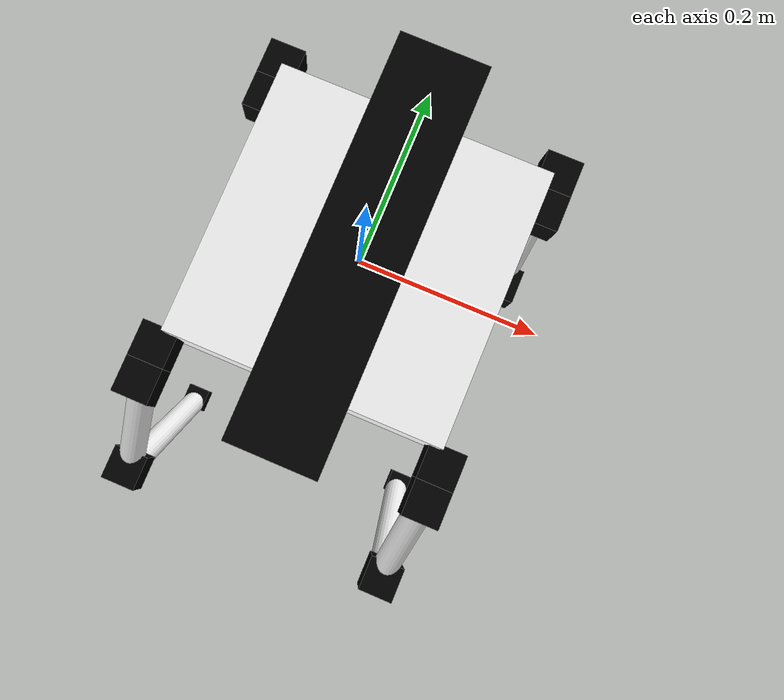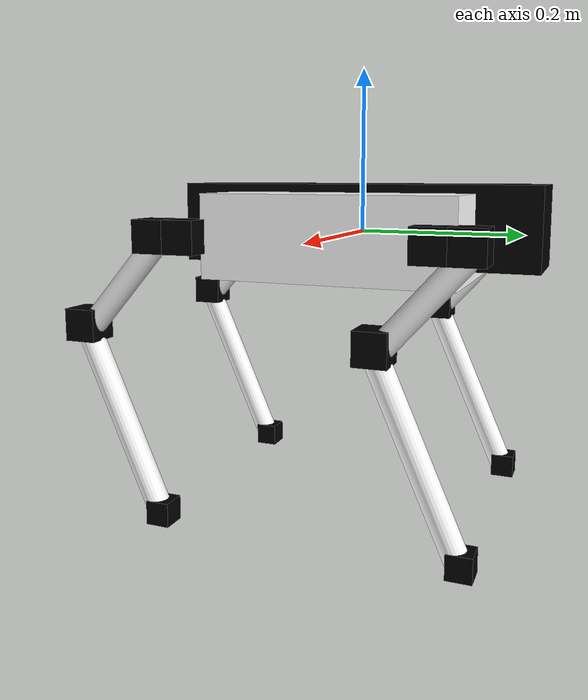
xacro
<?xml version="1.0"?>
<robot xmlns:xacro="http:/www.ros.org/wiki/xacro" name="robot">

<!-- leg -->
<xacro:property name ="leg1_r" value = "0.015"/>
<xacro:property name = "leg1_h" value = "0.15"/>
<xacro:property name = "leg2_r" value = "0.015"/>
<xacro:property name = "leg2_h" value = "0.25"/>

<!-- Moment -->
<xacro:property name="mass" value="5"/>
<xacro:property name="Ixx" value="0.01"/>
<xacro:property name="Iyy" value="0.01"/>
<xacro:property name="Izz" value="0.01"/>

<xacro:property name="effort" value = "30"/>
<xacro:property name = "base_effort" value = "70"/>
<xacro:property name="velocity" value ="5.0"/>
<xacro:property name="lower" value = "-3.14"/>
<xacro:property name ="upper" value ="3.14"/>
<link name="dummy">

</link>
<joint name="dummy_base" type = "fixed">
	<parent link="dummy"/>
	<child link = "base_link"/>

</joint>
<link name = "base_link">
	<visual>
		<origin xyz ="0 0 0" rpy= "0 0 0"/>
		<geometry>
			<box size="0.3 0.3 0.1"/>
		</geometry>
		<material name="white">
        			<color rgba="1 1 1 1"/>
      		</material>

	</visual>
	<collision>
		<origin xyz ="0 0 0" rpy= "0 0 0"/>
		<geometry>
			<box size="0.3 0.3 0.1"/>
		</geometry>
		<material name="white">
        			<color rgba="1 1 1 1"/>
      		</material>

	</collision>
	<inertial>
		<mass value="${mass}"/>
		<origin xyz="0 0 0"/>
		<inertia ixx="${Ixx}" ixy="0" ixz = "0" iyy="${Iyy}" iyz="0" izz="${Izz}"/>
	</inertial>
</link>
<link name = "box">
	<visual>
		<origin xyz ="0 0 0" rpy= "0 0 0"/>
		<geometry>
			<box size="0.1 0.45 0.1"/>
		</geometry>
		<material name="black">
        			<color rgba="0 0 0 1"/>
      		</material>

	</visual>
	<collision>
		<origin xyz ="0 0 0" rpy= "0 0 0"/>
		<geometry>
			<box size="0.1 0.45 0.1"/>
		</geometry>
		<material name="black">
        			<color rgba="0 0 0 1"/>
      		</material>

	</collision>
	<inertial>
		<mass value="4"/>
		<origin xyz="0 0 0"/>
		<inertia ixx="${Ixx}" ixy="0" ixz = "0" iyy="${Iyy}" iyz="0" izz="${Izz}"/>
	</inertial>
</link>
<joint name= " box_base_link" type = "fixed">
    	<origin xyz="0 0 0.01" rpy="0 0 0"/>
    	<parent link="base_link"/>
    	<child link="box"/>
</joint>
<joint name= "leg1_back1_base_link" type = "revolute">
    	<origin xyz="0.159 -0.165 0" rpy="0 0 -1.57"/>
    	<parent link="base_link"/>
    	<child link="rot_back1_bas"/>
    	<limit effort="${effort}" velocity = "${velocity}" lower = "0" upper="3.14"/>
</joint>
<link name="rot_back1_bas">
	<visual>
		<origin xyz ="0 0 0" rpy= "0 0 0"/>
		<geometry>
			<box size= "0.04 0.04 0.04"/>
		</geometry>
		<material name = "black">
			<color rgba="0.0 0.0 0.0 1.0"/>
		</material>
	</visual>
	<collision>
		<origin xyz ="0 0 0" rpy= "0 0 0"/>
		<geometry>
			<box size= "0.04 0.04 0.04"/>
		</geometry>
		<surface>
          	<friction>
            		<ode>
              			<mu>200.0</mu>
              			<mu2>100.0</mu2>
            		</ode>
          	</friction>
        		</surface>
		<material name = "black">
			<color rgba="0.0 0.0 0.0 1.0"/>
		</material>
	</collision>
	<inertial>
		<mass value="${mass}"/>
		<origin xyz="0 0 0"/>
		<inertia ixx="${Ixx}" ixy="0" ixz = "0" iyy="${Iyy}" iyz="0" izz="${Izz}"/>
	</inertial>
</link>
<joint name = "back1_rot_base" type = "continuous">
	<origin xyz="0.04 0 0" rpy="0 0 1.57"/>
    	<parent link="rot_back1_bas"/>
    	<child link="back1_base_leg"/>
    	<limit effort="${effort}" velocity = "${velocity}" lower = "${lower}" upper="${upper}"/>
</joint>
<link name="back1_base_leg">
	<visual>
		<origin xyz ="0 0 0" rpy= "0 0 0"/>
		<geometry>
			<box size= "0.04 0.04 0.04"/>
		</geometry>
		<material name = "black">
			<color rgba="0.0 0.0 0.0 1.0"/>
		</material>
	</visual>
	<collision>
		<origin xyz ="0 0 0" rpy= "0 0 0"/>
		<geometry>
			<box size= "0.04 0.04 0.04"/>
		</geometry>
		<surface>
          	<friction>
            		<ode>
              			<mu>200.0</mu>
              			<mu2>100.0</mu2>
            		</ode>
          	</friction>
        		</surface>
		<material name = "black">
			<color rgba="0.0 0.0 0.0 1.0"/>
		</material>
	</collision>
	<inertial>
		<mass value="2"/>
		<origin xyz="0 0 0"/>
		<inertia ixx="${Ixx}" ixy="0" ixz = "0" iyy="${Iyy}" iyz="0" izz="${Izz}"/>
	</inertial>
</link>
<joint name= "leg1_back1_base_leg" type = "fixed">
    	<origin xyz="0 0 0" rpy="0 0 0"/>
    	<parent link="back1_base_leg"/>
    	<child link="back1_leg1"/>
    	<limit effort="${effort}" velocity = "${velocity}" lower = "${lower}" upper="${upper}"/>
</joint>
<link name="back1_leg1">
	<visual>
		<origin xyz ="0 -0.05 -0.065" rpy= "-0.729373 0 0"/>
		<geometry>
			<cylinder length="${leg1_h}" radius="${leg1_r}"/>
		</geometry>
		<material name = "white">
			<color rgba="1.0 1.0 1.0 1.0"/>
		</material>
	</visual>
	<collision>
		<origin xyz ="0 -0.05 -0.065" rpy= "-0.729373 0 0"/>
		<geometry>
			<cylinder length="${leg1_h}" radius="${leg1_r}"/>
		</geometry>
		<surface>
          	<friction>
            		<ode>
              			<mu>200.0</mu>
              			<mu2>100.0</mu2>
            		</ode>
          	</friction>
        		</surface>
		<material name = "white">
			<color rgba="1.0 1.0 1.0 1.0"/>
		</material>
	</collision>
	<inertial>
		<mass value="${mass}"/>
		<origin xyz="0 0 0"/>
		<inertia ixx="${Ixx}" ixy="0" ixz = "0" iyy="${Iyy}" iyz="0" izz="${Izz}"/>
	</inertial>
</link>

<link name="back1_joint1">
	<visual>
		<origin xyz ="0 0 0" rpy= "0 0 0"/>
		<geometry>
			<box size= "0.04 0.04 0.04"/>
		</geometry>
		<material name = "black">
			<color rgba="0.0 0.0 0.0 1.0"/>
		</material>
	</visual>
	<collision>
		<origin xyz ="0 0 0" rpy= "0 0 0"/>
		<geometry>
			<box size= "0.04 0.04 0.04"/>
		</geometry>
		<surface>
          	<friction>
            		<ode>
              			<mu>200.0</mu>
              			<mu2>100.0</mu2>
            		</ode>
          	</friction>
        		</surface>
		<material name = "black">
			<color rgba="0.0 0.0 0.0 1.0"/>
		</material>
	</collision>
	<inertial>
		<mass value="1"/>
		<origin xyz="0 0 0"/>
		<inertia ixx="${Ixx}" ixy="0" ixz = "0" iyy="${Iyy}" iyz="0" izz="${Izz}"/>
	</inertial>
</link>

<joint name= "back1_leg1_joint1" type = "continuous">
    	<origin xyz="0 -0.1 -0.1118" rpy="0 0 0"/>
    	<parent link="back1_leg1"/>
    	<child link="back1_joint1"/>
    	<limit effort="${effort}" velocity = "${velocity}" lower = "${lower}" upper="${upper}"/>
</joint>
<link name="back1_leg2">
	<visual>
		<origin xyz ="0 0.045 -0.1118" rpy= "0.411322 0 0"/>
		<geometry>
			<cylinder length="${leg2_h}" radius="${leg2_r}"/>
		</geometry>
		<material name = "white">
			<color rgba="1.0 1.0 1.0 1.0"/>
		</material>
	</visual>
	<collision>
		<origin xyz ="0 0.045 -0.1118" rpy= "0.411322 0 0"/>
		<geometry>
			<cylinder length="${leg2_h}" radius="${leg2_r}"/>
		</geometry>
		<material name = "white">
			<color rgba="1.0 1.0 1.0 1.0"/>
		</material>
	</collision>
	<inertial>
		<mass value="2"/>
		<origin xyz="0 0 0.015"/>
		<inertia ixx="${Ixx}" ixy="0" ixz = "0" iyy="${Iyy}" iyz="0" izz="${Izz}"/>
	</inertial>
</link>
<joint name= " back1_leg2_joint1" type = "fixed">
    	<origin xyz="0 0 0" rpy="0 0 0"/>
    	<parent link="back1_joint1"/>
    	<child link="back1_leg2"/>
</joint>
<link name="back1_roller">
	<visual>
		<origin xyz ="0 0 0" rpy= "0 0 0"/>
		<geometry>
			<box size= "0.03 0.03 0.03"/>
		</geometry>
		<material name = "black">
			<color rgba="0.0 0.0 0.0 1.0"/>
		</material>
	</visual>
	<collision>
		<origin xyz ="0 0 0" rpy= "0 0 0"/>
		<geometry>
			<box size= "0.03 0.04 0.03"/>
		</geometry>
		<material name = "black">
			<color rgba="0.0 0.0 0.0 1.0"/>
		</material>
	</collision>
	<inertial>
		<mass value="1"/>
		<origin xyz="0 0.04 0"/>
		<inertia ixx="${Ixx}" ixy="0" ixz = "0" iyy="${Iyy}" iyz="0" izz="${Izz}"/>
	</inertial>
</link>
<joint name= " back1_leg2_roller" type = "fixed">
    	<origin xyz="0 0.1 -0.22912" rpy="0 0 0"/>
    	<parent link="back1_leg2"/>
    	<child link="back1_roller"/>
</joint>

<joint name= "leg1_back2_base_link" type = "revolute">
    	<origin xyz="-0.159 -0.165 0" rpy="0 0 -1.57"/>
    	<parent link="base_link"/>
    	<child link="rot_back2_bas"/>
    	<limit effort="${effort}" velocity = "${velocity}" lower = "-3.14" upper="0"/>
</joint>
<link name="rot_back2_bas">
	<visual>
		<origin xyz ="0 0 0" rpy= "0 0 0"/>
		<geometry>
			<box size= "0.04 0.04 0.04"/>
		</geometry>
		<material name = "black">
			<color rgba="0.0 0.0 0.0 1.0"/>
		</material>
	</visual>
	<collision>
		<origin xyz ="0 0 0" rpy= "0 0 0"/>
		<geometry>
			<box size= "0.04 0.04 0.04"/>
		</geometry>
		<surface>
          	<friction>
            		<ode>
              			<mu>200.0</mu>
              			<mu2>100.0</mu2>
            		</ode>
          	</friction>
        		</surface>
		<material name = "black">
			<color rgba="0.0 0.0 0.0 1.0"/>
		</material>
	</collision>
	<inertial>
		<mass value="${mass}"/>
		<origin xyz="0 0 0"/>
		<inertia ixx="${Ixx}" ixy="0" ixz = "0" iyy="${Iyy}" iyz="0" izz="${Izz}"/>
	</inertial>
</link>
<joint name = "back2_rot_base" type = "continuous">
	<origin xyz="0.04 0 0" rpy="0 0 1.57"/>
    	<parent link="rot_back2_bas"/>
    	<child link="back2_base_leg"/>
    	<limit effort="${effort}" velocity = "${velocity}" lower = "${lower}" upper="${upper}"/>
</joint>
<link name="back2_base_leg">
	<visual>
		<origin xyz ="0 0 0" rpy= "0 0 0"/>
		<geometry>
			<box size= "0.04 0.04 0.04"/>
		</geometry>
		<material name = "black">
			<color rgba="0.0 0.0 0.0 1.0"/>
		</material>
	</visual>
	<collision>
		<origin xyz ="0 0 0" rpy= "0 0 0"/>
		<geometry>
			<box size= "0.04 0.04 0.04"/>
		</geometry>
		<surface>
          	<friction>
            		<ode>
              			<mu>200.0</mu>
              			<mu2>100.0</mu2>
            		</ode>
          	</friction>
        		</surface>
		<material name = "black">
			<color rgba="0.0 0.0 0.0 1.0"/>
		</material>
	</collision>
	<inertial>
		<mass value="2"/>
		<origin xyz="0 0 0"/>
		<inertia ixx="${Ixx}" ixy="0" ixz = "0" iyy="${Iyy}" iyz="0" izz="${Izz}"/>
	</inertial>
</link>
<joint name= "leg1_back2_base_leg" type = "fixed">
    	<origin xyz="0 0 0" rpy="0 0 0"/>
    	<parent link="back2_base_leg"/>
    	<child link="back2_leg1"/>
    	<limit effort="${effort}" velocity = "${velocity}" lower = "${lower}" upper="${upper}"/>
</joint>
<link name="back2_leg1">
	<visual>
		<origin xyz ="0 -0.05 -0.065" rpy= "-0.729373 0 0"/>
		<geometry>
			<cylinder length="${leg1_h}" radius="${leg1_r}"/>
		</geometry>
		<material name = "white">
			<color rgba="1.0 1.0 1.0 1.0"/>
		</material>
	</visual>
	<collision>
		<origin xyz ="0 -0.05 -0.065" rpy= "-0.729373 0 0"/>
		<geometry>
			<cylinder length="${leg1_h}" radius="${leg1_r}"/>
		</geometry>
		<surface>
          	<friction>
            		<ode>
              			<mu>200.0</mu>
              			<mu2>100.0</mu2>
            		</ode>
          	</friction>
        		</surface>
		<material name = "white">
			<color rgba="1.0 1.0 1.0 1.0"/>
		</material>
	</collision>
	<inertial>
		<mass value="${mass}"/>
		<origin xyz="0 0 0"/>
		<inertia ixx="${Ixx}" ixy="0" ixz = "0" iyy="${Iyy}" iyz="0" izz="${Izz}"/>
	</inertial>
</link>

<link name="back2_joint1">
	<visual>
		<origin xyz ="0 0 0" rpy= "0 0 0"/>
		<geometry>
			<box size= "0.04 0.04 0.04"/>
		</geometry>
		<material name = "black">
			<color rgba="0.0 0.0 0.0 1.0"/>
		</material>
	</visual>
	<collision>
		<origin xyz ="0 0 0" rpy= "0 0 0"/>
		<geometry>
			<box size= "0.04 0.04 0.04"/>
		</geometry>
		<surface>
          	<friction>
            		<ode>
              			<mu>200.0</mu>
              			<mu2>100.0</mu2>
            		</ode>
          	</friction>
        		</surface>
		<material name = "black">
			<color rgba="0.0 0.0 0.0 1.0"/>
		</material>
	</collision>
	<inertial>
		<mass value="1"/>
		<origin xyz="0 0 0"/>
		<inertia ixx="${Ixx}" ixy="0" ixz = "0" iyy="${Iyy}" iyz="0" izz="${Izz}"/>
	</inertial>
</link>

<joint name= "back2_leg1_joint1" type = "continuous">
    	<origin xyz="0 -0.1 -0.1118" rpy="0 0 0"/>
    	<parent link="back2_leg1"/>
    	<child link="back2_joint1"/>
    	<limit effort="${effort}" velocity = "${velocity}" lower = "${lower}" upper="${upper}"/>
</joint>
<link name="back2_leg2">
	<visual>
		<origin xyz ="0 0.045 -0.1118" rpy= "0.411322 0 0"/>
		<geometry>
			<cylinder length="${leg2_h}" radius="${leg2_r}"/>
		</geometry>
		<material name = "white">
			<color rgba="1.0 1.0 1.0 1.0"/>
		</material>
	</visual>
	<collision>
		<origin xyz ="0 0.045 -0.1118" rpy= "0.411322 0 0"/>
		<geometry>
			<cylinder length="${leg2_h}" radius="${leg2_r}"/>
		</geometry>
		<material name = "white">
			<color rgba="1.0 1.0 1.0 1.0"/>
		</material>
	</collision>
	<inertial>
		<mass value="2"/>
		<origin xyz="0 0 0.015"/>
		<inertia ixx="${Ixx}" ixy="0" ixz = "0" iyy="${Iyy}" iyz="0" izz="${Izz}"/>
	</inertial>
</link>
<joint name= "back2_leg2_joint1" type = "fixed">
    	<origin xyz="0 0 0" rpy="0 0 0"/>
    	<parent link="back2_joint1"/>
    	<child link="back2_leg2"/>
</joint>
<link name="back2_roller">
	<visual>
		<origin xyz ="0 0 0" rpy= "0 0 0"/>
		<geometry>
			<box size= "0.03 0.03 0.03"/>
		</geometry>
		<material name = "black">
			<color rgba="0.0 0.0 0.0 1.0"/>
		</material>
	</visual>
	<collision>
		<origin xyz ="0 0 0" rpy= "0 0 0"/>
		<geometry>
			<box size= "0.03 0.04 0.03"/>
		</geometry>
		<material name = "black">
			<color rgba="0.0 0.0 0.0 1.0"/>
		</material>
	</collision>
	<inertial>
		<mass value="1"/>
		<origin xyz="0 0.04 0"/>
		<inertia ixx="${Ixx}" ixy="0" ixz = "0" iyy="${Iyy}" iyz="0" izz="${Izz}"/>
	</inertial>
</link>
<joint name= " back2_leg2_roller" type = "fixed">
    	<origin xyz="0 0.1 -0.22912" rpy="0 0 0"/>
    	<parent link="back2_leg2"/>
    	<child link="back2_roller"/>
</joint>
<joint name="leg1_face1_base_link" type ="revolute">
    	<origin xyz="0.159 0.125 0" rpy="0 0 -1.57"/>
    	<parent link="base_link"/>
    	<child link="rot_face1_bas"/>
    	<limit effort="${effort}" velocity = "${velocity}" lower = "0" upper="3.14"/>
</joint>
<link name="rot_face1_bas">
	<visual>
		<origin xyz ="0 0 0" rpy= "0 0 0"/>
		<geometry>
			<box size= "0.04 0.04 0.04"/>
		</geometry>
		<material name = "black">
			<color rgba="0.0 0.0 0.0 1.0"/>
		</material>
	</visual>
	<collision>
		<origin xyz ="0 0 0" rpy= "0 0 0"/>
		<geometry>
			<box size= "0.04 0.04 0.04"/>
		</geometry>
		<surface>
          	<friction>
            		<ode>
              			<mu>200.0</mu>
              			<mu2>100.0</mu2>
            		</ode>
          	</friction>
        		</surface>
		<material name = "black">
			<color rgba="0.0 0.0 0.0 1.0"/>
		</material>
	</collision>
	<inertial>
		<mass value="${mass}"/>
		<origin xyz="0 0 0"/>
		<inertia ixx="${Ixx}" ixy="0" ixz = "0" iyy="${Iyy}" iyz="0" izz="${Izz}"/>
	</inertial>
</link>
<joint name = "face1_rot_base" type = "continuous">
	<origin xyz="-0.04 0 0" rpy="0 0 1.57"/>
    	<parent link="rot_face1_bas"/>
    	<child link="face1_base_leg"/>
    	<limit effort="${effort}" velocity = "${velocity}" lower = "${lower}" upper="${upper}"/>
</joint>
<link name="face1_base_leg">
	<visual>
		<origin xyz ="0 0 0" rpy= "0 0 0"/>
		<geometry>
			<box size= "0.04 0.04 0.04"/>
		</geometry>
		<material name = "black">
			<color rgba="0.0 0.0 0.0 1.0"/>
		</material>
	</visual>
	<collision>
		<origin xyz ="0 0 0" rpy= "0 0 0"/>
		<geometry>
			<box size= "0.04 0.04 0.04"/>
		</geometry>
		<surface>
          	<friction>
            		<ode>
              			<mu>200.0</mu>
              			<mu2>100.0</mu2>
            		</ode>
          	</friction>
        		</surface>
		<material name = "black">
			<color rgba="0.0 0.0 0.0 1.0"/>
		</material>
	</collision>
	<inertial>
		<mass value="2"/>
		<origin xyz="0 0 0"/>
		<inertia ixx="${Ixx}" ixy="0" ixz = "0" iyy="${Iyy}" iyz="0" izz="${Izz}"/>
	</inertial>
</link>
<joint name= "leg1_face1_base_leg" type = "fixed">
    	<origin xyz="0 0 0" rpy="0 0 0"/>
    	<parent link="face1_base_leg"/>
    	<child link="face1_leg1"/>
    	<limit effort="${effort}" velocity = "${velocity}" lower = "${lower}" upper="${upper}"/>
</joint>
<link name="face1_leg1">
	<visual>
		<origin xyz ="0 -0.05 -0.065" rpy= "-0.729373 0 0"/>
		<geometry>
			<cylinder length="${leg1_h}" radius="${leg1_r}"/>
		</geometry>
		<material name = "white">
			<color rgba="1.0 1.0 1.0 1.0"/>
		</material>
	</visual>
	<collision>
		<origin xyz ="0 -0.05 -0.065" rpy= "-0.729373 0 0"/>
		<geometry>
			<cylinder length="${leg1_h}" radius="${leg1_r}"/>
		</geometry>
		<surface>
          	<friction>
            		<ode>
              			<mu>200.0</mu>
              			<mu2>100.0</mu2>
            		</ode>
          	</friction>
        		</surface>
		<material name = "white">
			<color rgba="1.0 1.0 1.0 1.0"/>
		</material>
	</collision>
	<inertial>
		<mass value="${mass}"/>
		<origin xyz="0 0 0"/>
		<inertia ixx="${Ixx}" ixy="0" ixz = "0" iyy="${Iyy}" iyz="0" izz="${Izz}"/>
	</inertial>
</link>

<link name="face1_joint1">
	<visual>
		<origin xyz ="0 0 0" rpy= "0 0 0"/>
		<geometry>
			<box size= "0.04 0.04 0.04"/>
		</geometry>
		<material name = "black">
			<color rgba="0.0 0.0 0.0 1.0"/>
		</material>
	</visual>
	<collision>
		<origin xyz ="0 0 0" rpy= "0 0 0"/>
		<geometry>
			<box size= "0.04 0.04 0.04"/>
		</geometry>
		<surface>
          	<friction>
            		<ode>
              			<mu>200.0</mu>
              			<mu2>100.0</mu2>
            		</ode>
          	</friction>
        		</surface>
		<material name = "black">
			<color rgba="0.0 0.0 0.0 1.0"/>
		</material>
	</collision>
	<inertial>
		<mass value="1"/>
		<origin xyz="0 0 0"/>
		<inertia ixx="${Ixx}" ixy="0" ixz = "0" iyy="${Iyy}" iyz="0" izz="${Izz}"/>
	</inertial>
</link>

<joint name= "face1_leg1_joint1" type = "continuous">
    	<origin xyz="0 -0.1 -0.1118" rpy="0 0 0"/>
    	<parent link="face1_leg1"/>
    	<child link="face1_joint1"/>
    	<limit effort="${effort}" velocity = "${velocity}" lower = "${lower}" upper="${upper}"/>
</joint>
<link name="face1_leg2">
	<visual>
		<origin xyz ="0 0.045 -0.1118" rpy= "0.411322 0 0"/>
		<geometry>
			<cylinder length="${leg2_h}" radius="${leg2_r}"/>
		</geometry>
		<material name = "white">
			<color rgba="1.0 1.0 1.0 1.0"/>
		</material>
	</visual>
	<collision>
		<origin xyz ="0 0.045 -0.1118" rpy= "0.411322 0 0"/>
		<geometry>
			<cylinder length="${leg2_h}" radius="${leg2_r}"/>
		</geometry>
		<material name = "white">
			<color rgba="1.0 1.0 1.0 1.0"/>
		</material>
	</collision>
	<inertial>
		<mass value="2"/>
		<origin xyz="0 0 0.015"/>
		<inertia ixx="${Ixx}" ixy="0" ixz = "0" iyy="${Iyy}" iyz="0" izz="${Izz}"/>
	</inertial>
</link>
<joint name= "face1_leg2_joint1" type = "fixed">
    	<origin xyz="0 0 0" rpy="0 0 0"/>
    	<parent link="face1_joint1"/>
    	<child link="face1_leg2"/>
</joint>
<link name="face1_roller">
	<visual>
		<origin xyz ="0 0 0" rpy= "0 0 0"/>
		<geometry>
			<box size= "0.03 0.03 0.03"/>
		</geometry>
		<material name = "black">
			<color rgba="0.0 0.0 0.0 1.0"/>
		</material>
	</visual>
	<collision>
		<origin xyz ="0 0 0" rpy= "0 0 0"/>
		<geometry>
			<box size= "0.03 0.04 0.03"/>
		</geometry>
		<material name = "black">
			<color rgba="0.0 0.0 0.0 1.0"/>
		</material>
	</collision>
	<inertial>
		<mass value="1"/>
		<origin xyz="0 0.04 0"/>
		<inertia ixx="${Ixx}" ixy="0" ixz = "0" iyy="${Iyy}" iyz="0" izz="${Izz}"/>
	</inertial>
</link>
<joint name= " face1_leg2_roller" type = "fixed">
    	<origin xyz="0 0.1 -0.22912" rpy="0 0 0"/>
    	<parent link="face1_leg2"/>
    	<child link="face1_roller"/>
</joint>
<joint name= "leg1_face2_base_link" type = "revolute">
    	<origin xyz="-0.159 0.125 0" rpy="0 0 -1.57"/>
    	<parent link="base_link"/>
    	<child link="rot_face2_bas"/>
    	<limit effort="${effort}" velocity = "${velocity}" lower = "-3.14" upper="0"/>
</joint>
<link name="rot_face2_bas">
	<visual>
		<origin xyz ="0 0 0" rpy= "0 0 0"/>
		<geometry>
			<box size= "0.04 0.04 0.04"/>
		</geometry>
		<material name = "black">
			<color rgba="0.0 0.0 0.0 1.0"/>
		</material>
	</visual>
	<collision>
		<origin xyz ="0 0 0" rpy= "0 0 0"/>
		<geometry>
			<box size= "0.04 0.04 0.04"/>
		</geometry>
		<surface>
          	<friction>
            		<ode>
              			<mu>200.0</mu>
              			<mu2>100.0</mu2>
            		</ode>
          	</friction>
        		</surface>
		<material name = "black">
			<color rgba="0.0 0.0 0.0 1.0"/>
		</material>
	</collision>
	<inertial>
		<mass value="${mass}"/>
		<origin xyz="0 0 0"/>
		<inertia ixx="${Ixx}" ixy="0" ixz = "0" iyy="${Iyy}" iyz="0" izz="${Izz}"/>
	</inertial>
</link>
<joint name = "face2_rot_base" type = "continuous">
	<origin xyz="-0.04 0 0" rpy="0 0 1.57"/>
    	<parent link="rot_face2_bas"/>
    	<child link="face2_base_leg"/>
    	<limit effort="${effort}" velocity = "${velocity}" lower = "${lower}" upper="${upper}"/>
</joint>
<link name="face2_base_leg">
	<visual>
		<origin xyz ="0 0 0" rpy= "0 0 0"/>
		<geometry>
			<box size= "0.04 0.04 0.04"/>
		</geometry>
		<material name = "black">
			<color rgba="0.0 0.0 0.0 1.0"/>
		</material>
	</visual>
	<collision>
		<origin xyz ="0 0 0" rpy= "0 0 0"/>
		<geometry>
			<box size= "0.04 0.04 0.04"/>
		</geometry>
		<surface>
          	<friction>
            		<ode>
              			<mu>200.0</mu>
              			<mu2>100.0</mu2>
            		</ode>
          	</friction>
        		</surface>
		<material name = "black">
			<color rgba="0.0 0.0 0.0 1.0"/>
		</material>
	</collision>
	<inertial>
		<mass value="2"/>
		<origin xyz="0 0 0"/>
		<inertia ixx="${Ixx}" ixy="0" ixz = "0" iyy="${Iyy}" iyz="0" izz="${Izz}"/>
	</inertial>
</link>
<joint name= " leg1_face2_base_leg" type = "fixed">
    	<origin xyz="0 0 0" rpy="0 0 0"/>
    	<parent link="face2_base_leg"/>
    	<child link="face2_leg1"/>
    	<limit effort="${effort}" velocity = "${velocity}" lower = "${lower}" upper="${upper}"/>
</joint>
<link name="face2_leg1">
	<visual>
		<origin xyz ="0 -0.05 -0.065" rpy= "-0.729373 0 0"/>
		<geometry>
			<cylinder length="${leg1_h}" radius="${leg1_r}"/>
		</geometry>
		<material name = "white">
			<color rgba="1.0 1.0 1.0 1.0"/>
		</material>
	</visual>
	<collision>
		<origin xyz ="0 -0.05 -0.065" rpy= "-0.729373 0 0"/>
		<geometry>
			<cylinder length="${leg1_h}" radius="${leg1_r}"/>
		</geometry>
		<surface>
          	<friction>
            		<ode>
              			<mu>200.0</mu>
              			<mu2>100.0</mu2>
            		</ode>
          	</friction>
        		</surface>
		<material name = "white">
			<color rgba="1.0 1.0 1.0 1.0"/>
		</material>
	</collision>
	<inertial>
		<mass value="${mass}"/>
		<origin xyz="0 0 0"/>
		<inertia ixx="${Ixx}" ixy="0" ixz = "0" iyy="${Iyy}" iyz="0" izz="${Izz}"/>
	</inertial>
</link>

<link name="face2_joint1">
	<visual>
		<origin xyz ="0 0 0" rpy= "0 0 0"/>
		<geometry>
			<box size= "0.04 0.04 0.04"/>
		</geometry>
		<material name = "black">
			<color rgba="0.0 0.0 0.0 1.0"/>
		</material>
	</visual>
	<collision>
		<origin xyz ="0 0 0" rpy= "0 0 0"/>
		<geometry>
			<box size= "0.04 0.04 0.04"/>
		</geometry>
		<surface>
          	<friction>
            		<ode>
              			<mu>200.0</mu>
              			<mu2>100.0</mu2>
            		</ode>
          	</friction>
        		</surface>
		<material name = "black">
			<color rgba="0.0 0.0 0.0 1.0"/>
		</material>
	</collision>
	<inertial>
		<mass value="1"/>
		<origin xyz="0 0 0"/>
		<inertia ixx="${Ixx}" ixy="0" ixz = "0" iyy="${Iyy}" iyz="0" izz="${Izz}"/>
	</inertial>
</link>

<joint name= "face2_leg1_joint1" type = "continuous">
    	<origin xyz="0 -0.1 -0.1118" rpy="0 0 0"/>
    	<parent link="face2_leg1"/>
    	<child link="face2_joint1"/>
    	<limit effort="${effort}" velocity = "${velocity}"/>
</joint>
<link name="face2_leg2">
	<visual>
		<origin xyz ="0 0.045 -0.1118" rpy= "0.411322 0 0"/>
		<geometry>
			<cylinder length="${leg2_h}" radius="${leg2_r}"/>
		</geometry>
		<material name = "white">
			<color rgba="1.0 1.0 1.0 1.0"/>
		</material>
	</visual>
	<collision>
		<origin xyz ="0 0.045 -0.1118" rpy= "0.411322 0 0"/>
		<geometry>
			<cylinder length="${leg2_h}" radius="${leg2_r}"/>
		</geometry>
		<material name = "white">
			<color rgba="1.0 1.0 1.0 1.0"/>
		</material>
	</collision>
	<inertial>
		<mass value="2"/>
		<origin xyz="0 0 0.015"/>
		<inertia ixx="${Ixx}" ixy="0" ixz = "0" iyy="${Iyy}" iyz="0" izz="${Izz}"/>
	</inertial>
</link>
<joint name= " face2_leg2_joint1" type = "fixed">
    	<origin xyz="0 0 0" rpy="0 0 0"/>
    	<parent link="face2_joint1"/>
    	<child link="face2_leg2"/>
</joint>
<link name="face2_roller">
	<visual>
		<origin xyz ="0 0 0" rpy= "0 0 0"/>
		<geometry>
			<box size= "0.03 0.03 0.03"/>
		</geometry>
		<material name = "black">
			<color rgba="0.0 0.0 0.0 1.0"/>
		</material>
	</visual>
	<collision>
		<origin xyz ="0 0 0" rpy= "0 0 0"/>
		<geometry>
			<box size= "0.03 0.04 0.03"/>
		</geometry>
		<material name = "black">
			<color rgba="0.0 0.0 0.0 1.0"/>
		</material>
	</collision>
	<inertial>
		<mass value="1"/>
		<origin xyz="0 0.04 0"/>
		<inertia ixx="${Ixx}" ixy="0" ixz = "0" iyy="${Iyy}" iyz="0" izz="${Izz}"/>
	</inertial>
</link>
<joint name= " face2_leg2_roller" type = "fixed">
    	<origin xyz="0 0.1 -0.22912" rpy="0 0 0"/>
    	<parent link="face2_leg2"/>
    	<child link="face2_roller"/>
</joint>
<gazebo reference="base_link">
	<material>Gazebo/Black</material>
	<turnGravityOff>false</turnGravityOff>
</gazebo>

<!-- transmission -->
<transmission name = "back1_tran1">
	<type>transmission_interface/SimpleTransmission</type>
	<joint name = "leg1_back1_base_link">
		<hardwareInterface>hardware_interface/EffortJointInterface</hardwareInterface>
	</joint>
	<actuator name= "motor1">
		<hardwareInterface>hardware_interface/EffortJointInterface</hardwareInterface>
      		<mechanicalReduction>1</mechanicalReduction>
	</actuator>
</transmission>
<transmission name = "back1_tran2">
	<type>transmission_interface/SimpleTransmission</type>
	<joint name = "back1_rot_base">
		<hardwareInterface>hardware_interface/EffortJointInterface</hardwareInterface>
	</joint>
	<actuator name= "motor2">
		<hardwareInterface>hardware_interface/EffortJointInterface</hardwareInterface>
		<mechanicalReduction>1</mechanicalReduction>
	</actuator>
</transmission>
<transmission name = "back1_tran3">
	<type>transmission_interface/SimpleTransmission</type>
	<joint name = "back1_leg1_joint1">
		<hardwareInterface>hardware_interface/EffortJointInterface</hardwareInterface>
	</joint>
	<actuator name= "motor3">
		<hardwareInterface>hardware_interface/EffortJointInterface</hardwareInterface>
		<mechanicalReduction>1</mechanicalReduction>
	</actuator>
</transmission>

<transmission name = "back2_tran1">
	<type>transmission_interface/SimpleTransmission</type>
	<joint name = "leg1_back2_base_link">
		<hardwareInterface>hardware_interface/EffortJointInterface</hardwareInterface>
	</joint>
	<actuator name= "motor4">
		<hardwareInterface>hardware_interface/EffortJointInterface</hardwareInterface>
		<mechanicalReduction>1</mechanicalReduction>
	</actuator>
</transmission>
<transmission name = "back2_tran2">
	<type>transmission_interface/SimpleTransmission</type>
	<joint name = "back2_rot_base">
		<hardwareInterface>hardware_interface/EffortJointInterface</hardwareInterface>
	</joint>
	<actuator name= "motor5">
		<hardwareInterface>hardware_interface/EffortJointInterface</hardwareInterface>
		<mechanicalReduction>1</mechanicalReduction>
	</actuator>
</transmission>
<transmission name = "back2_tran3">
	<type>transmission_interface/SimpleTransmission</type>
	<joint name = "back2_leg1_joint1">
		<hardwareInterface>hardware_interface/EffortJointInterface</hardwareInterface>
	</joint>
	<actuator name= "motor6">
		<hardwareInterface>hardware_interface/EffortJointInterface</hardwareInterface>
		<mechanicalReduction>1</mechanicalReduction>
	</actuator>
</transmission>

<transmission name = "face1_tran1">
	<type>transmission_interface/SimpleTransmission</type>
	<joint name = "leg1_face1_base_link">
		<hardwareInterface>hardware_interface/EffortJointInterface</hardwareInterface>
	</joint>
	<actuator name= "motor7">
		<hardwareInterface>hardware_interface/EffortJointInterface</hardwareInterface>
		<mechanicalReduction>1</mechanicalReduction>
	</actuator>
</transmission>
<transmission name = "face1_tran2">
	<type>transmission_interface/SimpleTransmission</type>
	<joint name = "face1_rot_base">
		<hardwareInterface>hardware_interface/EffortJointInterface</hardwareInterface>
	</joint>
	<actuator name= "motor8">
		<hardwareInterface>hardware_interface/EffortJointInterface</hardwareInterface>
		<mechanicalReduction>1</mechanicalReduction>
	</actuator>
</transmission>
<transmission name = "face1_tran3">
	<type>transmission_interface/SimpleTransmission</type>
	<joint name = "face1_leg1_joint1">
		<hardwareInterface>hardware_interface/EffortJointInterface</hardwareInterface>
	</joint>
	<actuator name= "motor9">
		<hardwareInterface>hardware_interface/EffortJointInterface</hardwareInterface>
		<mechanicalReduction>1</mechanicalReduction>
	</actuator>
</transmission>

<transmission name = "face2_tran1">
	<type>transmission_interface/SimpleTransmission</type>
	<joint name = "leg1_face2_base_link">
		<hardwareInterface>hardware_interface/EffortJointInterface</hardwareInterface>
	</joint>
	<actuator name= "motor10">
		<hardwareInterface>hardware_interface/EffortJointInterface</hardwareInterface>
		<mechanicalReduction>1</mechanicalReduction>
	</actuator>
</transmission>
<transmission name = "face2_tran2">
	<type>transmission_interface/SimpleTransmission</type>
	<joint name = "face2_rot_base">
		<hardwareInterface>hardware_interface/EffortJointInterface</hardwareInterface>
	</joint>
	<actuator name= "motor11">
		<hardwareInterface>hardware_interface/EffortJointInterface</hardwareInterface>
		<mechanicalReduction>1</mechanicalReduction>
	</actuator>
</transmission>
<transmission name = "face2_tran3">
	<type>transmission_interface/SimpleTransmission</type>
	<joint name = "face2_leg1_joint1">
		<hardwareInterface>hardware_interface/EffortJointInterface</hardwareInterface>
	</joint>
	<actuator name= "motor12">
		<hardwareInterface>hardware_interface/EffortJointInterface</hardwareInterface>
		<mechanicalReduction>1</mechanicalReduction>
	</actuator>
</transmission>

<gazebo>
    <plugin name="gazebo_ros_control" filename="libgazebo_ros_control.so">
      <robotNamespace>/dog_robot</robotNamespace>
      <robotSimType>gazebo_ros_control/DefaultRobotHWSim</robotSimType>
    </plugin>
</gazebo>
</robot>
